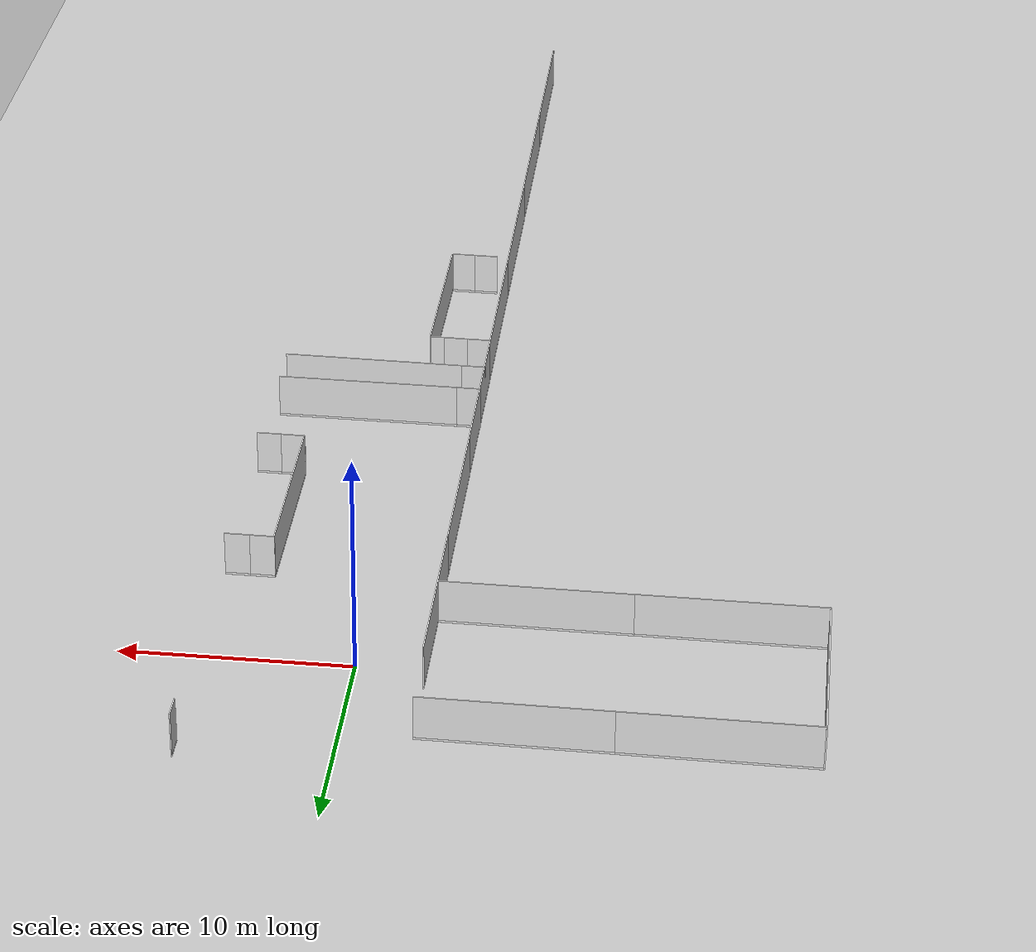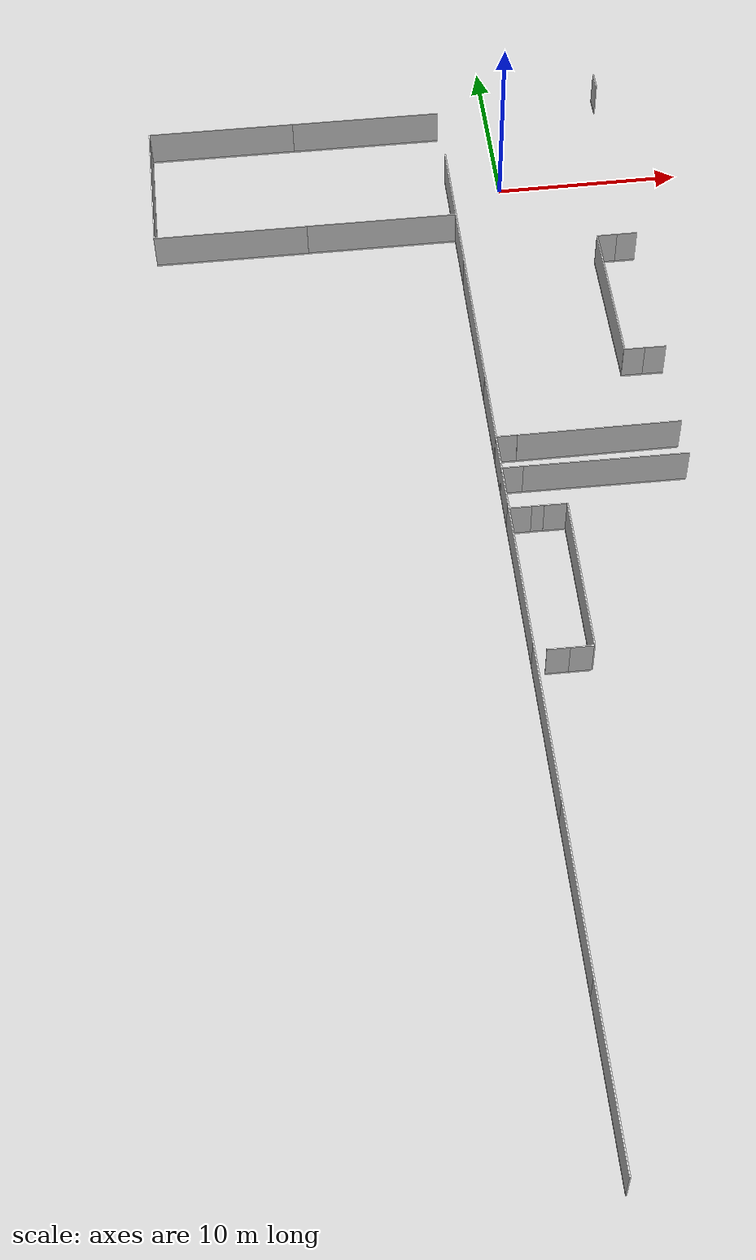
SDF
<sdf version="1.6">
 <world name="default">
  <model name="ground_plane">
   <static>1</static>
   <link name="link">
    <collision name="collision">
     <geometry><plane><normal>0 0 1</normal><size>100 100</size></plane></geometry>
     <surface><friction><ode><mu>100</mu><mu2>50</mu2></ode></friction></surface>
    </collision>
    <visual name="visual">
     <cast_shadows>0</cast_shadows>
     <geometry><plane><normal>0 0 1</normal><size>100 100</size></plane></geometry>
     <material>
      <script><uri>file://media/materials/scripts/gazebo.material</uri><name>Gazebo/Grey</name></script>
     </material>
    </visual>
    <velocity_decay><linear>0</linear><angular>0</angular></velocity_decay>
   </link>
  </model>
  <model name="full_wall_55_8295_2090">
   <link name="link">
    <inertial>
     <mass>50</mass>
     <inertia><ixx>1</ixx><ixy>0</ixy><ixz>0</ixz><iyy>1</iyy><iyz>0</iyz><izz>1</izz></inertia>
    </inertial>
    <visual name="bottom_frame">
     <pose>0 0 0.05 0 -0 0</pose>
     <geometry><box><size>0.055 8.295 0.1</size></box></geometry>
     <material>
      <script><uri>model://base_materials/color/scripts</uri><name>hsr_color/white</name></script>
     </material>
    </visual>
    <collision name="collision_bottom_frame">
     <pose>0 0 0.05 0 -0 0</pose>
     <geometry><box><size>0.055 8.295 0.1</size></box></geometry>
    </collision>
    <visual name="wall">
     <pose>0 0 1.095 0 -0 0</pose>
     <geometry><box><size>0.055 8.295 1.99</size></box></geometry>
     <material>
      <script>
       <uri>model://base_materials/wall/scripts</uri>
       <uri>model://base_materials/wall/textures</uri>
       <name>wall/white_noise</name>
      </script>
     </material>
    </visual>
    <collision name="collision_wall">
     <pose>0 0 1.095 0 -0 0</pose>
     <geometry><box><size>0.055 8.295 1.99</size></box></geometry>
    </collision>
    <velocity_decay><linear>0</linear><angular>0</angular></velocity_decay>
   </link>
   <static>1</static>
   <pose>-2.99017 -2.98151 0 0 -0 0</pose>
  </model>
  <model name="full_wall_55_8295_2090_clone_0">
   <link name="link">
    <inertial>
     <mass>50</mass>
     <inertia><ixx>1</ixx><ixy>0</ixy><ixz>0</ixz><iyy>1</iyy><iyz>0</iyz><izz>1</izz></inertia>
    </inertial>
    <visual name="bottom_frame">
     <pose>0 0 0.05 0 -0 0</pose>
     <geometry><box><size>0.055 8.295 0.1</size></box></geometry>
     <material>
      <script><uri>model://base_materials/color/scripts</uri><name>hsr_color/white</name></script>
     </material>
    </visual>
    <collision name="collision_bottom_frame">
     <pose>0 0 0.05 0 -0 0</pose>
     <geometry><box><size>0.055 8.295 0.1</size></box></geometry>
    </collision>
    <visual name="wall">
     <pose>0 0 1.095 0 -0 0</pose>
     <geometry><box><size>0.055 8.295 1.99</size></box></geometry>
     <material>
      <script>
       <uri>model://base_materials/wall/scripts</uri>
       <uri>model://base_materials/wall/textures</uri>
       <name>wall/white_noise</name>
      </script>
     </material>
    </visual>
    <collision name="collision_wall">
     <pose>0 0 1.095 0 -0 0</pose>
     <geometry><box><size>0.055 8.295 1.99</size></box></geometry>
    </collision>
    <velocity_decay><linear>0</linear><angular>0</angular></velocity_decay>
   </link>
   <static>1</static>
   <pose>-2.99856 -11.2922 0 0 -0 0</pose>
  </model>
  <model name="full_wall_55_8295_2090_clone_clone">
   <link name="link">
    <inertial>
     <mass>50</mass>
     <inertia><ixx>1</ixx><ixy>0</ixy><ixz>0</ixz><iyy>1</iyy><iyz>0</iyz><izz>1</izz></inertia>
    </inertial>
    <visual name="bottom_frame">
     <pose>0 0 0.05 0 -0 0</pose>
     <geometry><box><size>0.055 8.295 0.1</size></box></geometry>
     <material>
      <script><uri>model://base_materials/color/scripts</uri><name>hsr_color/white</name></script>
     </material>
    </visual>
    <collision name="collision_bottom_frame">
     <pose>0 0 0.05 0 -0 0</pose>
     <geometry><box><size>0.055 8.295 0.1</size></box></geometry>
    </collision>
    <visual name="wall">
     <pose>0 0 1.095 0 -0 0</pose>
     <geometry><box><size>0.055 8.295 1.99</size></box></geometry>
     <material>
      <script>
       <uri>model://base_materials/wall/scripts</uri>
       <uri>model://base_materials/wall/textures</uri>
       <name>wall/white_noise</name>
      </script>
     </material>
    </visual>
    <collision name="collision_wall">
     <pose>0 0 1.095 0 -0 0</pose>
     <geometry><box><size>0.055 8.295 1.99</size></box></geometry>
    </collision>
    <velocity_decay><linear>0</linear><angular>0</angular></velocity_decay>
   </link>
   <static>1</static>
   <pose>4.38146 -10.3897 0 0 -0 0</pose>
  </model>
  <model name="full_wall_55_8295_2090_clone_0_clone_0">
   <link name="link">
    <inertial>
     <mass>50</mass>
     <inertia><ixx>1</ixx><ixy>0</ixy><ixz>0</ixz><iyy>1</iyy><iyz>0</iyz><izz>1</izz></inertia>
    </inertial>
    <visual name="bottom_frame">
     <pose>0 0 0.05 0 -0 0</pose>
     <geometry><box><size>0.055 8.295 0.1</size></box></geometry>
     <material>
      <script><uri>model://base_materials/color/scripts</uri><name>hsr_color/white</name></script>
     </material>
    </visual>
    <collision name="collision_bottom_frame">
     <pose>0 0 0.05 0 -0 0</pose>
     <geometry><box><size>0.055 8.295 0.1</size></box></geometry>
    </collision>
    <visual name="wall">
     <pose>0 0 1.095 0 -0 0</pose>
     <geometry><box><size>0.055 8.295 1.99</size></box></geometry>
     <material>
      <script>
       <uri>model://base_materials/wall/scripts</uri>
       <uri>model://base_materials/wall/textures</uri>
       <name>wall/white_noise</name>
      </script>
     </material>
    </visual>
    <collision name="collision_wall">
     <pose>0 0 1.095 0 -0 0</pose>
     <geometry><box><size>0.055 8.295 1.99</size></box></geometry>
    </collision>
    <velocity_decay><linear>0</linear><angular>0</angular></velocity_decay>
   </link>
   <static>1</static>
   <pose>-2.99358 -19.6031 0 0 -0 0</pose>
  </model>
  <model name="full_wall_55_900_2090_clone_0_clone_clone">
   <link name="link">
    <inertial>
     <mass>50</mass>
     <inertia><ixx>1</ixx><ixy>0</ixy><ixz>0</ixz><iyy>1</iyy><iyz>0</iyz><izz>1</izz></inertia>
    </inertial>
    <visual name="bottom_frame">
     <pose>0 0 0.05 0 -0 0</pose>
     <geometry><box><size>0.055 1.04 0.1</size></box></geometry>
     <material>
      <script><uri>model://base_materials/color/scripts</uri><name>hsr_color/white</name></script>
     </material>
    </visual>
    <collision name="collision_bottom_frame">
     <pose>0 0 0.05 0 -0 0</pose>
     <geometry><box><size>0.055 1.04 0.1</size></box></geometry>
    </collision>
    <visual name="wall">
     <pose>0 0 1.095 0 -0 0</pose>
     <geometry><box><size>0.055 1.04 1.99</size></box></geometry>
     <material>
      <script>
       <uri>model://base_materials/wall/scripts</uri>
       <uri>model://base_materials/wall/textures</uri>
       <name>wall/white_noise</name>
      </script>
     </material>
    </visual>
    <collision name="collision_wall">
     <pose>0 0 1.095 0 -0 0</pose>
     <geometry><box><size>0.055 1.04 1.99</size></box></geometry>
    </collision>
    <velocity_decay><linear>0</linear><angular>0</angular></velocity_decay>
   </link>
   <static>1</static>
   <pose>6.38364 6.36759 0 0 -0 0</pose>
  </model>
  <model name="full_wall_55_1100_2090_clone_1">
   <link name="link">
    <inertial>
     <mass>50</mass>
     <inertia><ixx>1</ixx><ixy>0</ixy><ixz>0</ixz><iyy>1</iyy><iyz>0</iyz><izz>1</izz></inertia>
    </inertial>
    <visual name="bottom_frame">
     <pose>0 0 0.05 0 -0 0</pose>
     <geometry><box><size>0.055 1.1 0.1</size></box></geometry>
     <material>
      <script><uri>model://base_materials/color/scripts</uri><name>hsr_color/white</name></script>
     </material>
    </visual>
    <collision name="collision_bottom_frame">
     <pose>0 0 0.05 0 -0 0</pose>
     <geometry><box><size>0.055 1.1 0.1</size></box></geometry>
    </collision>
    <visual name="wall">
     <pose>0 0 1.095 0 -0 0</pose>
     <geometry><box><size>0.055 1.1 1.99</size></box></geometry>
     <material>
      <script>
       <uri>model://base_materials/wall/scripts</uri>
       <uri>model://base_materials/wall/textures</uri>
       <name>wall/white_noise</name>
      </script>
     </material>
    </visual>
    <collision name="collision_wall">
     <pose>0 0 1.095 0 -0 0</pose>
     <geometry><box><size>0.055 1.1 1.99</size></box></geometry>
    </collision>
    <velocity_decay><linear>0</linear><angular>0</angular></velocity_decay>
   </link>
   <static>1</static>
   <pose>4.91101 -6.22857 0 0 -0 1.56492</pose>
  </model>
  <model name="full_wall_55_1100_2090_clone_1_clone">
   <link name="link">
    <inertial>
     <mass>50</mass>
     <inertia><ixx>1</ixx><ixy>0</ixy><ixz>0</ixz><iyy>1</iyy><iyz>0</iyz><izz>1</izz></inertia>
    </inertial>
    <visual name="bottom_frame">
     <pose>0 0 0.05 0 -0 0</pose>
     <geometry><box><size>0.055 1.1 0.1</size></box></geometry>
     <material>
      <script><uri>model://base_materials/color/scripts</uri><name>hsr_color/white</name></script>
     </material>
    </visual>
    <collision name="collision_bottom_frame">
     <pose>0 0 0.05 0 -0 0</pose>
     <geometry><box><size>0.055 1.1 0.1</size></box></geometry>
    </collision>
    <visual name="wall">
     <pose>0 0 1.095 0 -0 0</pose>
     <geometry><box><size>0.055 1.1 1.99</size></box></geometry>
     <material>
      <script>
       <uri>model://base_materials/wall/scripts</uri>
       <uri>model://base_materials/wall/textures</uri>
       <name>wall/white_noise</name>
      </script>
     </material>
    </visual>
    <collision name="collision_wall">
     <pose>0 0 1.095 0 -0 0</pose>
     <geometry><box><size>0.055 1.1 1.99</size></box></geometry>
    </collision>
    <velocity_decay><linear>0</linear><angular>0</angular></velocity_decay>
   </link>
   <static>1</static>
   <pose>5.99626 -6.23444 0 0 -0 1.56492</pose>
  </model>
  <model name="full_wall_55_1100_2090_clone_1_clone_0">
   <link name="link">
    <inertial>
     <mass>50</mass>
     <inertia><ixx>1</ixx><ixy>0</ixy><ixz>0</ixz><iyy>1</iyy><iyz>0</iyz><izz>1</izz></inertia>
    </inertial>
    <visual name="bottom_frame">
     <pose>0 0 0.05 0 -0 0</pose>
     <geometry><box><size>0.055 1.1 0.1</size></box></geometry>
     <material>
      <script><uri>model://base_materials/color/scripts</uri><name>hsr_color/white</name></script>
     </material>
    </visual>
    <collision name="collision_bottom_frame">
     <pose>0 0 0.05 0 -0 0</pose>
     <geometry><box><size>0.055 1.1 0.1</size></box></geometry>
    </collision>
    <visual name="wall">
     <pose>0 0 1.095 0 -0 0</pose>
     <geometry><box><size>0.055 1.1 1.99</size></box></geometry>
     <material>
      <script>
       <uri>model://base_materials/wall/scripts</uri>
       <uri>model://base_materials/wall/textures</uri>
       <name>wall/white_noise</name>
      </script>
     </material>
    </visual>
    <collision name="collision_wall">
     <pose>0 0 1.095 0 -0 0</pose>
     <geometry><box><size>0.055 1.1 1.99</size></box></geometry>
    </collision>
    <velocity_decay><linear>0</linear><angular>0</angular></velocity_decay>
   </link>
   <static>1</static>
   <pose>4.89571 -14.5628 0 0 -0 1.55722</pose>
  </model>
  <model name="full_wall_55_8295_2090_clone_0_clone_0_clone">
   <link name="link">
    <inertial>
     <mass>50</mass>
     <inertia><ixx>1</ixx><ixy>0</ixy><ixz>0</ixz><iyy>1</iyy><iyz>0</iyz><izz>1</izz></inertia>
    </inertial>
    <visual name="bottom_frame">
     <pose>0 0 0.05 0 -0 0</pose>
     <geometry><box><size>0.055 8.295 0.1</size></box></geometry>
     <material>
      <script><uri>model://base_materials/color/scripts</uri><name>hsr_color/white</name></script>
     </material>
    </visual>
    <collision name="collision_bottom_frame">
     <pose>0 0 0.05 0 -0 0</pose>
     <geometry><box><size>0.055 8.295 0.1</size></box></geometry>
    </collision>
    <visual name="wall">
     <pose>0 0 1.095 0 -0 0</pose>
     <geometry><box><size>0.055 8.295 1.99</size></box></geometry>
     <material>
      <script>
       <uri>model://base_materials/wall/scripts</uri>
       <uri>model://base_materials/wall/textures</uri>
       <name>wall/white_noise</name>
      </script>
     </material>
    </visual>
    <collision name="collision_wall">
     <pose>0 0 1.095 0 -0 0</pose>
     <geometry><box><size>0.055 8.295 1.99</size></box></geometry>
    </collision>
    <velocity_decay><linear>0</linear><angular>0</angular></velocity_decay>
   </link>
   <static>1</static>
   <pose>-2.99257 -27.8706 0 0 -0 0</pose>
  </model>
  <model name="full_wall_55_8295_2090_clone_clone_clone_clone">
   <link name="link">
    <inertial>
     <mass>50</mass>
     <inertia><ixx>1</ixx><ixy>0</ixy><ixz>0</ixz><iyy>1</iyy><iyz>0</iyz><izz>1</izz></inertia>
    </inertial>
    <visual name="bottom_frame">
     <pose>0 0 0.05 0 -0 0</pose>
     <geometry><box><size>0.055 8.295 0.1</size></box></geometry>
     <material>
      <script><uri>model://base_materials/color/scripts</uri><name>hsr_color/white</name></script>
     </material>
    </visual>
    <collision name="collision_bottom_frame">
     <pose>0 0 0.05 0 -0 0</pose>
     <geometry><box><size>0.055 8.295 0.1</size></box></geometry>
    </collision>
    <visual name="wall">
     <pose>0 0 1.095 0 -0 0</pose>
     <geometry><box><size>0.055 8.295 1.99</size></box></geometry>
     <material>
      <script>
       <uri>model://base_materials/wall/scripts</uri>
       <uri>model://base_materials/wall/textures</uri>
       <name>wall/white_noise</name>
      </script>
     </material>
    </visual>
    <collision name="collision_wall">
     <pose>0 0 1.095 0 -0 0</pose>
     <geometry><box><size>0.055 8.295 1.99</size></box></geometry>
    </collision>
    <velocity_decay><linear>0</linear><angular>0</angular></velocity_decay>
   </link>
   <static>1</static>
   <pose>2.21841 -19.629 0 0 -0 1.56591</pose>
  </model>
  <model name="full_wall_55_1100_2090_clone_1_clone_0_clone">
   <link name="link">
    <inertial>
     <mass>50</mass>
     <inertia><ixx>1</ixx><ixy>0</ixy><ixz>0</ixz><iyy>1</iyy><iyz>0</iyz><izz>1</izz></inertia>
    </inertial>
    <visual name="bottom_frame">
     <pose>0 0 0.05 0 -0 0</pose>
     <geometry><box><size>0.055 1.1 0.1</size></box></geometry>
     <material>
      <script><uri>model://base_materials/color/scripts</uri><name>hsr_color/white</name></script>
     </material>
    </visual>
    <collision name="collision_bottom_frame">
     <pose>0 0 0.05 0 -0 0</pose>
     <geometry><box><size>0.055 1.1 0.1</size></box></geometry>
    </collision>
    <visual name="wall">
     <pose>0 0 1.095 0 -0 0</pose>
     <geometry><box><size>0.055 1.1 1.99</size></box></geometry>
     <material>
      <script>
       <uri>model://base_materials/wall/scripts</uri>
       <uri>model://base_materials/wall/textures</uri>
       <name>wall/white_noise</name>
      </script>
     </material>
    </visual>
    <collision name="collision_wall">
     <pose>0 0 1.095 0 -0 0</pose>
     <geometry><box><size>0.055 1.1 1.99</size></box></geometry>
    </collision>
    <velocity_decay><linear>0</linear><angular>0</angular></velocity_decay>
   </link>
   <static>1</static>
   <pose>5.99589 -14.5797 0 0 -0 1.55722</pose>
  </model>
  <model name="full_wall_55_8295_2090_clone_clone_clone_clone_clone">
   <link name="link">
    <inertial>
     <mass>50</mass>
     <inertia><ixx>1</ixx><ixy>0</ixy><ixz>0</ixz><iyy>1</iyy><iyz>0</iyz><izz>1</izz></inertia>
    </inertial>
    <visual name="bottom_frame">
     <pose>0 0 0.05 0 -0 0</pose>
     <geometry><box><size>0.055 8.295 0.1</size></box></geometry>
     <material>
      <script><uri>model://base_materials/color/scripts</uri><name>hsr_color/white</name></script>
     </material>
    </visual>
    <collision name="collision_bottom_frame">
     <pose>0 0 0.05 0 -0 0</pose>
     <geometry><box><size>0.055 8.295 0.1</size></box></geometry>
    </collision>
    <visual name="wall">
     <pose>0 0 1.095 0 -0 0</pose>
     <geometry><box><size>0.055 8.295 1.99</size></box></geometry>
     <material>
      <script>
       <uri>model://base_materials/wall/scripts</uri>
       <uri>model://base_materials/wall/textures</uri>
       <name>wall/white_noise</name>
      </script>
     </material>
    </visual>
    <collision name="collision_wall">
     <pose>0 0 1.095 0 -0 0</pose>
     <geometry><box><size>0.055 8.295 1.99</size></box></geometry>
    </collision>
    <velocity_decay><linear>0</linear><angular>0</angular></velocity_decay>
   </link>
   <static>1</static>
   <pose>2.21479 -21.6775 0 0 -0 1.55605</pose>
  </model>
  <model name="full_wall_55_1100_2090_clone_1_clone_0_clone_clone">
   <link name="link">
    <inertial>
     <mass>50</mass>
     <inertia><ixx>1</ixx><ixy>0</ixy><ixz>0</ixz><iyy>1</iyy><iyz>0</iyz><izz>1</izz></inertia>
    </inertial>
    <visual name="bottom_frame">
     <pose>0 0 0.05 0 -0 0</pose>
     <geometry><box><size>0.055 1.1 0.1</size></box></geometry>
     <material>
      <script><uri>model://base_materials/color/scripts</uri><name>hsr_color/white</name></script>
     </material>
    </visual>
    <collision name="collision_bottom_frame">
     <pose>0 0 0.05 0 -0 0</pose>
     <geometry><box><size>0.055 1.1 0.1</size></box></geometry>
    </collision>
    <visual name="wall">
     <pose>0 0 1.095 0 -0 0</pose>
     <geometry><box><size>0.055 1.1 1.99</size></box></geometry>
     <material>
      <script>
       <uri>model://base_materials/wall/scripts</uri>
       <uri>model://base_materials/wall/textures</uri>
       <name>wall/white_noise</name>
      </script>
     </material>
    </visual>
    <collision name="collision_wall">
     <pose>0 0 1.095 0 -0 0</pose>
     <geometry><box><size>0.055 1.1 1.99</size></box></geometry>
    </collision>
    <velocity_decay><linear>0</linear><angular>0</angular></velocity_decay>
   </link>
   <static>1</static>
   <pose>-2.49355 -19.6012 0 0 -0 1.55722</pose>
  </model>
  <model name="full_wall_55_1100_2090_clone_1_clone_0_clone_clone_clone">
   <link name="link">
    <inertial>
     <mass>50</mass>
     <inertia><ixx>1</ixx><ixy>0</ixy><ixz>0</ixz><iyy>1</iyy><iyz>0</iyz><izz>1</izz></inertia>
    </inertial>
    <visual name="bottom_frame">
     <pose>0 0 0.05 0 -0 0</pose>
     <geometry><box><size>0.055 1.1 0.1</size></box></geometry>
     <material>
      <script><uri>model://base_materials/color/scripts</uri><name>hsr_color/white</name></script>
     </material>
    </visual>
    <collision name="collision_bottom_frame">
     <pose>0 0 0.05 0 -0 0</pose>
     <geometry><box><size>0.055 1.1 0.1</size></box></geometry>
    </collision>
    <visual name="wall">
     <pose>0 0 1.095 0 -0 0</pose>
     <geometry><box><size>0.055 1.1 1.99</size></box></geometry>
     <material>
      <script>
       <uri>model://base_materials/wall/scripts</uri>
       <uri>model://base_materials/wall/textures</uri>
       <name>wall/white_noise</name>
      </script>
     </material>
    </visual>
    <collision name="collision_wall">
     <pose>0 0 1.095 0 -0 0</pose>
     <geometry><box><size>0.055 1.1 1.99</size></box></geometry>
    </collision>
    <velocity_decay><linear>0</linear><angular>0</angular></velocity_decay>
   </link>
   <static>1</static>
   <pose>-2.47874 -21.6104 0 0 -0 1.55722</pose>
  </model>
  <model name="full_wall_55_8295_2090_clone_clone_clone_1_clone">
   <link name="link">
    <inertial>
     <mass>50</mass>
     <inertia><ixx>1</ixx><ixy>0</ixy><ixz>0</ixz><iyy>1</iyy><iyz>0</iyz><izz>1</izz></inertia>
    </inertial>
    <visual name="bottom_frame">
     <pose>0 0 0.05 0 -0 0</pose>
     <geometry><box><size>0.055 8.295 0.1</size></box></geometry>
     <material>
      <script><uri>model://base_materials/color/scripts</uri><name>hsr_color/white</name></script>
     </material>
    </visual>
    <collision name="collision_bottom_frame">
     <pose>0 0 0.05 0 -0 0</pose>
     <geometry><box><size>0.055 8.295 0.1</size></box></geometry>
    </collision>
    <visual name="wall">
     <pose>0 0 1.095 0 -0 0</pose>
     <geometry><box><size>0.055 8.295 1.99</size></box></geometry>
     <material>
      <script>
       <uri>model://base_materials/wall/scripts</uri>
       <uri>model://base_materials/wall/textures</uri>
       <name>wall/white_noise</name>
      </script>
     </material>
    </visual>
    <collision name="collision_wall">
     <pose>0 0 1.095 0 -0 0</pose>
     <geometry><box><size>0.055 8.295 1.99</size></box></geometry>
    </collision>
    <velocity_decay><linear>0</linear><angular>0</angular></velocity_decay>
   </link>
   <static>1</static>
   <pose>-0.171741 -28.3071 0 0 0 -0.008779</pose>
  </model>
  <model name="full_wall_55_1100_2090_clone_1_clone_0_clone_clone_clone_clone">
   <link name="link">
    <inertial>
     <mass>50</mass>
     <inertia><ixx>1</ixx><ixy>0</ixy><ixz>0</ixz><iyy>1</iyy><iyz>0</iyz><izz>1</izz></inertia>
    </inertial>
    <visual name="bottom_frame">
     <pose>0 0 0.05 0 -0 0</pose>
     <geometry><box><size>0.055 1.1 0.1</size></box></geometry>
     <material>
      <script><uri>model://base_materials/color/scripts</uri><name>hsr_color/white</name></script>
     </material>
    </visual>
    <collision name="collision_bottom_frame">
     <pose>0 0 0.05 0 -0 0</pose>
     <geometry><box><size>0.055 1.1 0.1</size></box></geometry>
    </collision>
    <visual name="wall">
     <pose>0 0 1.095 0 -0 0</pose>
     <geometry><box><size>0.055 1.1 1.99</size></box></geometry>
     <material>
      <script>
       <uri>model://base_materials/wall/scripts</uri>
       <uri>model://base_materials/wall/textures</uri>
       <name>wall/white_noise</name>
      </script>
     </material>
    </visual>
    <collision name="collision_wall">
     <pose>0 0 1.095 0 -0 0</pose>
     <geometry><box><size>0.055 1.1 1.99</size></box></geometry>
    </collision>
    <velocity_decay><linear>0</linear><angular>0</angular></velocity_decay>
   </link>
   <static>1</static>
   <pose>-1.34276 -24.1379 0 0 -0 1.55722</pose>
  </model>
  <model name="full_wall_55_1100_2090_clone_1_clone_0_clone_clone_clone_clone_clone">
   <link name="link">
    <inertial>
     <mass>50</mass>
     <inertia><ixx>1</ixx><ixy>0</ixy><ixz>0</ixz><iyy>1</iyy><iyz>0</iyz><izz>1</izz></inertia>
    </inertial>
    <visual name="bottom_frame">
     <pose>0 0 0.05 0 -0 0</pose>
     <geometry><box><size>0.055 1.1 0.1</size></box></geometry>
     <material>
      <script><uri>model://base_materials/color/scripts</uri><name>hsr_color/white</name></script>
     </material>
    </visual>
    <collision name="collision_bottom_frame">
     <pose>0 0 0.05 0 -0 0</pose>
     <geometry><box><size>0.055 1.1 0.1</size></box></geometry>
    </collision>
    <visual name="wall">
     <pose>0 0 1.095 0 -0 0</pose>
     <geometry><box><size>0.055 1.1 1.99</size></box></geometry>
     <material>
      <script>
       <uri>model://base_materials/wall/scripts</uri>
       <uri>model://base_materials/wall/textures</uri>
       <name>wall/white_noise</name>
      </script>
     </material>
    </visual>
    <collision name="collision_wall">
     <pose>0 0 1.095 0 -0 0</pose>
     <geometry><box><size>0.055 1.1 1.99</size></box></geometry>
    </collision>
    <velocity_decay><linear>0</linear><angular>0</angular></velocity_decay>
   </link>
   <static>1</static>
   <pose>-2.43548 -24.1293 0 0 -0 1.55722</pose>
  </model>
  <model name="full_wall_55_1100_2090_clone_1_clone_0_clone_clone_clone_clone_clone_0">
   <link name="link">
    <inertial>
     <mass>50</mass>
     <inertia><ixx>1</ixx><ixy>0</ixy><ixz>0</ixz><iyy>1</iyy><iyz>0</iyz><izz>1</izz></inertia>
    </inertial>
    <visual name="bottom_frame">
     <pose>0 0 0.05 0 -0 0</pose>
     <geometry><box><size>0.055 1.1 0.1</size></box></geometry>
     <material>
      <script><uri>model://base_materials/color/scripts</uri><name>hsr_color/white</name></script>
     </material>
    </visual>
    <collision name="collision_bottom_frame">
     <pose>0 0 0.05 0 -0 0</pose>
     <geometry><box><size>0.055 1.1 0.1</size></box></geometry>
    </collision>
    <visual name="wall">
     <pose>0 0 1.095 0 -0 0</pose>
     <geometry><box><size>0.055 1.1 1.99</size></box></geometry>
     <material>
      <script>
       <uri>model://base_materials/wall/scripts</uri>
       <uri>model://base_materials/wall/textures</uri>
       <name>wall/white_noise</name>
      </script>
     </material>
    </visual>
    <collision name="collision_wall">
     <pose>0 0 1.095 0 -0 0</pose>
     <geometry><box><size>0.055 1.1 1.99</size></box></geometry>
    </collision>
    <velocity_decay><linear>0</linear><angular>0</angular></velocity_decay>
   </link>
   <static>1</static>
   <pose>-0.727713 -24.1553 0 0 -0 1.55722</pose>
  </model>
  <model name="full_wall_55_1100_2090_clone_1_clone_0_clone_clone_clone_clone_clone_0_clone">
   <link name="link">
    <inertial>
     <mass>50</mass>
     <inertia><ixx>1</ixx><ixy>0</ixy><ixz>0</ixz><iyy>1</iyy><iyz>0</iyz><izz>1</izz></inertia>
    </inertial>
    <visual name="bottom_frame">
     <pose>0 0 0.05 0 -0 0</pose>
     <geometry><box><size>0.055 1.1 0.1</size></box></geometry>
     <material>
      <script><uri>model://base_materials/color/scripts</uri><name>hsr_color/white</name></script>
     </material>
    </visual>
    <collision name="collision_bottom_frame">
     <pose>0 0 0.05 0 -0 0</pose>
     <geometry><box><size>0.055 1.1 0.1</size></box></geometry>
    </collision>
    <visual name="wall">
     <pose>0 0 1.095 0 -0 0</pose>
     <geometry><box><size>0.055 1.1 1.99</size></box></geometry>
     <material>
      <script>
       <uri>model://base_materials/wall/scripts</uri>
       <uri>model://base_materials/wall/textures</uri>
       <name>wall/white_noise</name>
      </script>
     </material>
    </visual>
    <collision name="collision_wall">
     <pose>0 0 1.095 0 -0 0</pose>
     <geometry><box><size>0.055 1.1 1.99</size></box></geometry>
    </collision>
    <velocity_decay><linear>0</linear><angular>0</angular></velocity_decay>
   </link>
   <static>1</static>
   <pose>-0.796364 -32.4727 0 0 -0 1.55722</pose>
  </model>
  <model name="full_wall_55_1100_2090_clone_1_clone_0_clone_clone_clone_clone_clone_0_clone_clone">
   <link name="link">
    <inertial>
     <mass>50</mass>
     <inertia><ixx>1</ixx><ixy>0</ixy><ixz>0</ixz><iyy>1</iyy><iyz>0</iyz><izz>1</izz></inertia>
    </inertial>
    <visual name="bottom_frame">
     <pose>0 0 0.05 0 -0 0</pose>
     <geometry><box><size>0.055 1.1 0.1</size></box></geometry>
     <material>
      <script><uri>model://base_materials/color/scripts</uri><name>hsr_color/white</name></script>
     </material>
    </visual>
    <collision name="collision_bottom_frame">
     <pose>0 0 0.05 0 -0 0</pose>
     <geometry><box><size>0.055 1.1 0.1</size></box></geometry>
    </collision>
    <visual name="wall">
     <pose>0 0 1.095 0 -0 0</pose>
     <geometry><box><size>0.055 1.1 1.99</size></box></geometry>
     <material>
      <script>
       <uri>model://base_materials/wall/scripts</uri>
       <uri>model://base_materials/wall/textures</uri>
       <name>wall/white_noise</name>
      </script>
     </material>
    </visual>
    <collision name="collision_wall">
     <pose>0 0 1.095 0 -0 0</pose>
     <geometry><box><size>0.055 1.1 1.99</size></box></geometry>
    </collision>
    <velocity_decay><linear>0</linear><angular>0</angular></velocity_decay>
   </link>
   <static>1</static>
   <pose>-1.89044 -32.4555 0 0 -0 1.55722</pose>
  </model>
  <model name="full_wall_55_8295_2090_clone_0_clone_0_clone_clone">
   <link name="link">
    <inertial>
     <mass>50</mass>
     <inertia><ixx>1</ixx><ixy>0</ixy><ixz>0</ixz><iyy>1</iyy><iyz>0</iyz><izz>1</izz></inertia>
    </inertial>
    <visual name="bottom_frame">
     <pose>0 0 0.05 0 -0 0</pose>
     <geometry><box><size>0.055 8.295 0.1</size></box></geometry>
     <material>
      <script><uri>model://base_materials/color/scripts</uri><name>hsr_color/white</name></script>
     </material>
    </visual>
    <collision name="collision_bottom_frame">
     <pose>0 0 0.05 0 -0 0</pose>
     <geometry><box><size>0.055 8.295 0.1</size></box></geometry>
    </collision>
    <visual name="wall">
     <pose>0 0 1.095 0 -0 0</pose>
     <geometry><box><size>0.055 8.295 1.99</size></box></geometry>
     <material>
      <script>
       <uri>model://base_materials/wall/scripts</uri>
       <uri>model://base_materials/wall/textures</uri>
       <name>wall/white_noise</name>
      </script>
     </material>
    </visual>
    <collision name="collision_wall">
     <pose>0 0 1.095 0 -0 0</pose>
     <geometry><box><size>0.055 8.295 1.99</size></box></geometry>
    </collision>
    <velocity_decay><linear>0</linear><angular>0</angular></velocity_decay>
   </link>
   <static>1</static>
   <pose>-2.99554 -36.1534 0 0 -0 0</pose>
  </model>
  <model name="full_wall_55_8295_2090_clone_0_clone_0_clone_clone_0">
   <link name="link">
    <inertial>
     <mass>50</mass>
     <inertia><ixx>1</ixx><ixy>0</ixy><ixz>0</ixz><iyy>1</iyy><iyz>0</iyz><izz>1</izz></inertia>
    </inertial>
    <visual name="bottom_frame">
     <pose>0 0 0.05 0 -0 0</pose>
     <geometry><box><size>0.055 8.295 0.1</size></box></geometry>
     <material>
      <script><uri>model://base_materials/color/scripts</uri><name>hsr_color/white</name></script>
     </material>
    </visual>
    <collision name="collision_bottom_frame">
     <pose>0 0 0.05 0 -0 0</pose>
     <geometry><box><size>0.055 8.295 0.1</size></box></geometry>
    </collision>
    <visual name="wall">
     <pose>0 0 1.095 0 -0 0</pose>
     <geometry><box><size>0.055 8.295 1.99</size></box></geometry>
     <material>
      <script>
       <uri>model://base_materials/wall/scripts</uri>
       <uri>model://base_materials/wall/textures</uri>
       <name>wall/white_noise</name>
      </script>
     </material>
    </visual>
    <collision name="collision_wall">
     <pose>0 0 1.095 0 -0 0</pose>
     <geometry><box><size>0.055 8.295 1.99</size></box></geometry>
    </collision>
    <velocity_decay><linear>0</linear><angular>0</angular></velocity_decay>
   </link>
   <static>1</static>
   <pose>-2.9906 -44.4513 0 0 -0 0</pose>
  </model>
  <model name="full_wall_55_8295_2090_clone_0_clone_0_clone_clone_0_clone">
   <link name="link">
    <inertial>
     <mass>50</mass>
     <inertia><ixx>1</ixx><ixy>0</ixy><ixz>0</ixz><iyy>1</iyy><iyz>0</iyz><izz>1</izz></inertia>
    </inertial>
    <visual name="bottom_frame">
     <pose>0 0 0.05 0 -0 0</pose>
     <geometry><box><size>0.055 8.295 0.1</size></box></geometry>
     <material>
      <script><uri>model://base_materials/color/scripts</uri><name>hsr_color/white</name></script>
     </material>
    </visual>
    <collision name="collision_bottom_frame">
     <pose>0 0 0.05 0 -0 0</pose>
     <geometry><box><size>0.055 8.295 0.1</size></box></geometry>
    </collision>
    <visual name="wall">
     <pose>0 0 1.095 0 -0 0</pose>
     <geometry><box><size>0.055 8.295 1.99</size></box></geometry>
     <material>
      <script>
       <uri>model://base_materials/wall/scripts</uri>
       <uri>model://base_materials/wall/textures</uri>
       <name>wall/white_noise</name>
      </script>
     </material>
    </visual>
    <collision name="collision_wall">
     <pose>0 0 1.095 0 -0 0</pose>
     <geometry><box><size>0.055 8.295 1.99</size></box></geometry>
    </collision>
    <velocity_decay><linear>0</linear><angular>0</angular></velocity_decay>
   </link>
   <static>1</static>
   <pose>-2.9917 -52.7455 0 0 -0 0</pose>
  </model>
  <model name="full_wall_55_8295_2090_clone_clone_clone_clone_clone_0">
   <link name="link">
    <inertial>
     <mass>50</mass>
     <inertia><ixx>1</ixx><ixy>0</ixy><ixz>0</ixz><iyy>1</iyy><iyz>0</iyz><izz>1</izz></inertia>
    </inertial>
    <visual name="bottom_frame">
     <pose>0 0 0.05 0 -0 0</pose>
     <geometry><box><size>0.055 8.295 0.1</size></box></geometry>
     <material>
      <script><uri>model://base_materials/color/scripts</uri><name>hsr_color/white</name></script>
     </material>
    </visual>
    <collision name="collision_bottom_frame">
     <pose>0 0 0.05 0 -0 0</pose>
     <geometry><box><size>0.055 8.295 0.1</size></box></geometry>
    </collision>
    <visual name="wall">
     <pose>0 0 1.095 0 -0 0</pose>
     <geometry><box><size>0.055 8.295 1.99</size></box></geometry>
     <material>
      <script>
       <uri>model://base_materials/wall/scripts</uri>
       <uri>model://base_materials/wall/textures</uri>
       <name>wall/white_noise</name>
      </script>
     </material>
    </visual>
    <collision name="collision_wall">
     <pose>0 0 1.095 0 -0 0</pose>
     <geometry><box><size>0.055 8.295 1.99</size></box></geometry>
    </collision>
    <velocity_decay><linear>0</linear><angular>0</angular></velocity_decay>
   </link>
   <static>1</static>
   <pose>-7.15786 4.61263 0 0 -0 1.56591</pose>
  </model>
  <model name="full_wall_55_8295_2090_clone_clone_clone_clone_clone_0_clone">
   <link name="link">
    <inertial>
     <mass>50</mass>
     <inertia><ixx>1</ixx><ixy>0</ixy><ixz>0</ixz><iyy>1</iyy><iyz>0</iyz><izz>1</izz></inertia>
    </inertial>
    <visual name="bottom_frame">
     <pose>0 0 0.05 0 -0 0</pose>
     <geometry><box><size>0.055 8.295 0.1</size></box></geometry>
     <material>
      <script><uri>model://base_materials/color/scripts</uri><name>hsr_color/white</name></script>
     </material>
    </visual>
    <collision name="collision_bottom_frame">
     <pose>0 0 0.05 0 -0 0</pose>
     <geometry><box><size>0.055 8.295 0.1</size></box></geometry>
    </collision>
    <visual name="wall">
     <pose>0 0 1.095 0 -0 0</pose>
     <geometry><box><size>0.055 8.295 1.99</size></box></geometry>
     <material>
      <script>
       <uri>model://base_materials/wall/scripts</uri>
       <uri>model://base_materials/wall/textures</uri>
       <name>wall/white_noise</name>
      </script>
     </material>
    </visual>
    <collision name="collision_wall">
     <pose>0 0 1.095 0 -0 0</pose>
     <geometry><box><size>0.055 8.295 1.99</size></box></geometry>
    </collision>
    <velocity_decay><linear>0</linear><angular>0</angular></velocity_decay>
   </link>
   <static>1</static>
   <pose>-15.2464 4.65609 0 0 -0 1.56591</pose>
  </model>
  <model name="full_wall_55_8295_2090_clone_clone_2">
   <link name="link">
    <inertial>
     <mass>50</mass>
     <inertia><ixx>1</ixx><ixy>0</ixy><ixz>0</ixz><iyy>1</iyy><iyz>0</iyz><izz>1</izz></inertia>
    </inertial>
    <visual name="bottom_frame">
     <pose>0 0 0.05 0 -0 0</pose>
     <geometry><box><size>0.055 8.295 0.1</size></box></geometry>
     <material>
      <script><uri>model://base_materials/color/scripts</uri><name>hsr_color/white</name></script>
     </material>
    </visual>
    <collision name="collision_bottom_frame">
     <pose>0 0 0.05 0 -0 0</pose>
     <geometry><box><size>0.055 8.295 0.1</size></box></geometry>
    </collision>
    <visual name="wall">
     <pose>0 0 1.095 0 -0 0</pose>
     <geometry><box><size>0.055 8.295 1.99</size></box></geometry>
     <material>
      <script>
       <uri>model://base_materials/wall/scripts</uri>
       <uri>model://base_materials/wall/textures</uri>
       <name>wall/white_noise</name>
      </script>
     </material>
    </visual>
    <collision name="collision_wall">
     <pose>0 0 1.095 0 -0 0</pose>
     <geometry><box><size>0.055 8.295 1.99</size></box></geometry>
    </collision>
    <velocity_decay><linear>0</linear><angular>0</angular></velocity_decay>
   </link>
   <static>1</static>
   <pose>-19.409 0.561692 0 0 -0 0</pose>
  </model>
  <model name="full_wall_55_8295_2090_clone_clone_clone_clone_clone_0_clone_clone">
   <link name="link">
    <inertial>
     <mass>50</mass>
     <inertia><ixx>1</ixx><ixy>0</ixy><ixz>0</ixz><iyy>1</iyy><iyz>0</iyz><izz>1</izz></inertia>
    </inertial>
    <visual name="bottom_frame">
     <pose>0 0 0.05 0 -0 0</pose>
     <geometry><box><size>0.055 8.295 0.1</size></box></geometry>
     <material>
      <script><uri>model://base_materials/color/scripts</uri><name>hsr_color/white</name></script>
     </material>
    </visual>
    <collision name="collision_bottom_frame">
     <pose>0 0 0.05 0 -0 0</pose>
     <geometry><box><size>0.055 8.295 0.1</size></box></geometry>
    </collision>
    <visual name="wall">
     <pose>0 0 1.095 0 -0 0</pose>
     <geometry><box><size>0.055 8.295 1.99</size></box></geometry>
     <material>
      <script>
       <uri>model://base_materials/wall/scripts</uri>
       <uri>model://base_materials/wall/textures</uri>
       <name>wall/white_noise</name>
      </script>
     </material>
    </visual>
    <collision name="collision_wall">
     <pose>0 0 1.095 0 -0 0</pose>
     <geometry><box><size>0.055 8.295 1.99</size></box></geometry>
    </collision>
    <velocity_decay><linear>0</linear><angular>0</angular></velocity_decay>
   </link>
   <static>1</static>
   <pose>-15.295 -3.64415 0 0 -0 1.56591</pose>
  </model>
  <model name="full_wall_55_8295_2090_clone_clone_clone_clone_clone_0_clone_clone_0">
   <link name="link">
    <inertial>
     <mass>50</mass>
     <inertia><ixx>1</ixx><ixy>0</ixy><ixz>0</ixz><iyy>1</iyy><iyz>0</iyz><izz>1</izz></inertia>
    </inertial>
    <visual name="bottom_frame">
     <pose>0 0 0.05 0 -0 0</pose>
     <geometry><box><size>0.055 8.295 0.1</size></box></geometry>
     <material>
      <script><uri>model://base_materials/color/scripts</uri><name>hsr_color/white</name></script>
     </material>
    </visual>
    <collision name="collision_bottom_frame">
     <pose>0 0 0.05 0 -0 0</pose>
     <geometry><box><size>0.055 8.295 0.1</size></box></geometry>
    </collision>
    <visual name="wall">
     <pose>0 0 1.095 0 -0 0</pose>
     <geometry><box><size>0.055 8.295 1.99</size></box></geometry>
     <material>
      <script>
       <uri>model://base_materials/wall/scripts</uri>
       <uri>model://base_materials/wall/textures</uri>
       <name>wall/white_noise</name>
      </script>
     </material>
    </visual>
    <collision name="collision_wall">
     <pose>0 0 1.095 0 -0 0</pose>
     <geometry><box><size>0.055 8.295 1.99</size></box></geometry>
    </collision>
    <velocity_decay><linear>0</linear><angular>0</angular></velocity_decay>
   </link>
   <static>1</static>
   <pose>-7.1309 -3.67312 0 0 -0 1.56591</pose>
  </model>
 </world>
</sdf>
